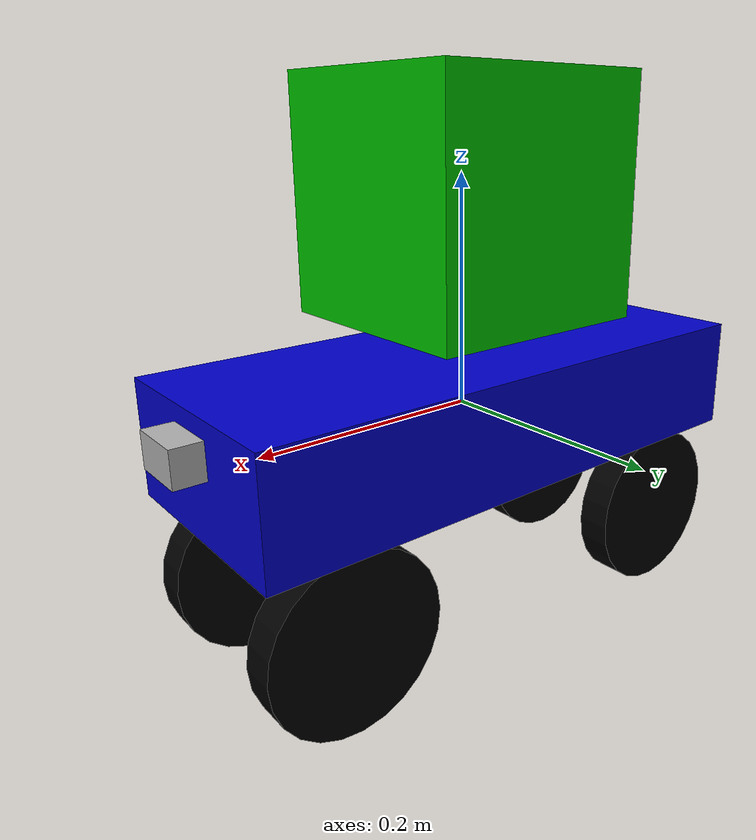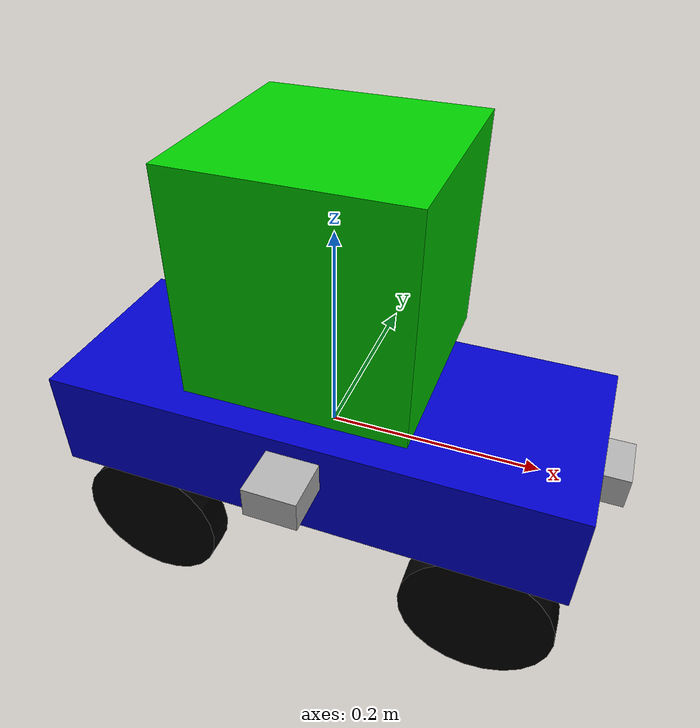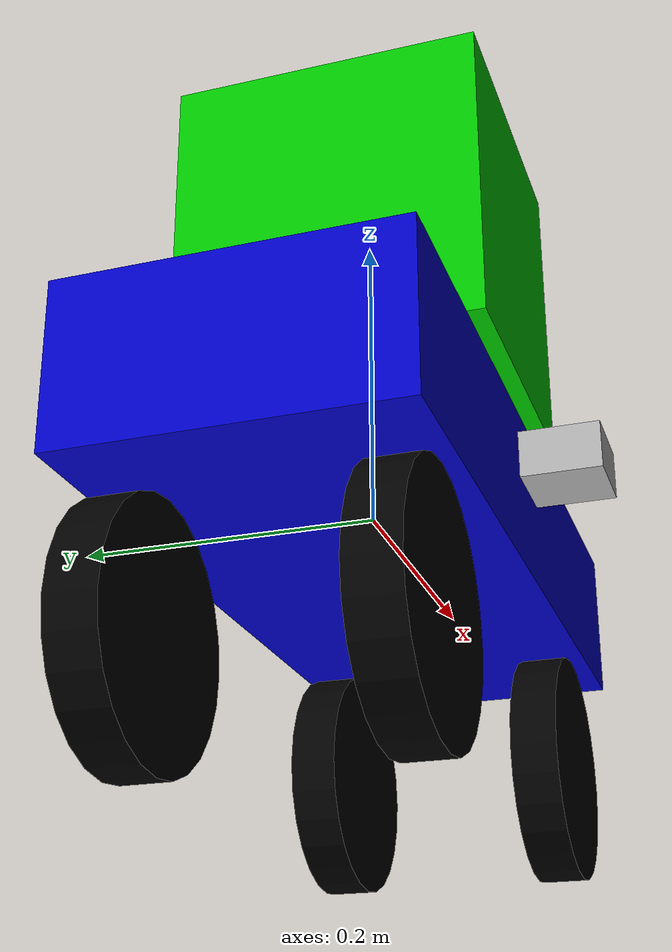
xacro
<?xml version="1.0"?>
<robot name="differential_robot" xmlns:xacro="http://www.ros.org/wiki/xacro">

  <!-- 添加机器人名称参数 -->
  <xacro:arg name="robot_name" default="robot"/>
  <xacro:property name="robot_name" value="$(arg robot_name)" />

  <!-- 材料定义 -->
  <material name="blue">
    <color rgba="0.0 0.0 0.8 1.0"/>
  </material>
  <material name="black">
    <color rgba="0.0 0.0 0.0 1.0"/>
  </material>
  <material name="gray">
    <color rgba="0.7 0.7 0.7 1.0"/>
  </material>
  <material name="red">
    <color rgba="0.8 0.0 0.0 1.0"/>
  </material>
  <material name="white">
    <color rgba="1.0 1.0 1.0 1.0"/>
  </material>
  <material name="green">
    <color rgba="0.0 0.8 0.0 1.0"/>
  </material>

  <!-- 参数定义 -->
  <xacro:property name="base_length" value="0.5" />
  <xacro:property name="base_width" value="0.2" />
  <xacro:property name="base_height" value="0.1" />
  <xacro:property name="wheel_radius" value="0.075" />
  <xacro:property name="wheel_length" value="0.03" />
  <xacro:property name="wheel_y_offset" value="0.075" />
  <xacro:property name="wheel_x_offset" value="0.175" />
  <xacro:property name="wheel_z_offset" value="-0.125" />
  <xacro:property name="cube_size" value="0.2" />
  <xacro:property name="cube_z_offset" value="0.18" />

  <!-- 底盘链接 - 添加TF前缀 -->
  <link name="${robot_name}/base_link">
    <visual>
      <origin xyz="0 0 0" rpy="0 0 0"/>
      <geometry>
        <box size="${base_length} ${base_width} ${base_height}"/>
      </geometry>
      <material name="blue"/>
    </visual>
    <collision>
      <origin xyz="0 0 0" rpy="0 0 0"/>
      <geometry>
        <box size="${base_length} ${base_width} ${base_height}"/>
      </geometry>
    </collision>
    <inertial>
      <mass value="5.0"/>
      <inertia ixx="${(1/12)*5.0*(base_width**2 + base_height**2)}"
               ixy="0.0"
               ixz="0.0"
               iyy="${(1/12)*5.0*(base_length**2 + base_height**2)}"
               iyz="0.0"
               izz="${(1/12)*5.0*(base_length**2 + base_width**2)}"/>
    </inertial>
  </link>

  <!-- 立方体链接 -->
  <link name="${robot_name}/cube_link">
    <visual>
      <origin xyz="0 0 0" rpy="0 0 0"/>
      <geometry>
        <box size="${cube_size} ${cube_size} ${cube_size}"/>
      </geometry>
      <material name="green"/>
    </visual>
    <collision>
      <origin xyz="0 0 0" rpy="0 0 0"/>
      <geometry>
        <box size="${cube_size} ${cube_size} ${cube_size}"/>
      </geometry>
    </collision>
    <inertial>
      <mass value="1.0"/>
      <inertia ixx="${(1/12)*1.0*(cube_size**2 + cube_size**2)}"
               ixy="0.0"
               ixz="0.0"
               iyy="${(1/12)*1.0*(cube_size**2 + cube_size**2)}"
               iyz="0.0"
               izz="${(1/12)*1.0*(cube_size**2 + cube_size**2)}"/>
    </inertial>
  </link>

  <!-- 立方体关节 -->
  <joint name="${robot_name}/cube_joint" type="fixed">
    <parent link="${robot_name}/base_link"/>
    <child link="${robot_name}/cube_link"/>
    <origin xyz="0 0 ${cube_z_offset}" rpy="0 0 0"/>
  </joint>

  <gazebo reference="${robot_name}/cube_link">
    <material>Gazebo/ar</material>
  </gazebo>

  <!-- 轮子宏定义 - 修改为连续旋转关节 -->
  <xacro:macro name="wheel" params="name parent xyz">
    <link name="${robot_name}/${name}">
      <visual>
        <origin xyz="0 0 0" rpy="${pi/2} 0 0"/>
        <geometry>
          <cylinder radius="${wheel_radius}" length="${wheel_length}"/>
        </geometry>
        <material name="black"/>
      </visual>
      <collision>
        <origin xyz="0 0 0" rpy="${pi/2} 0 0"/>
        <geometry>
          <cylinder radius="${wheel_radius}" length="${wheel_length}"/>
        </geometry>
      </collision>
      <inertial>
        <mass value="0.5"/>
        <inertia ixx="${0.5*0.5*(3*wheel_radius**2 + wheel_length**2)/12}"
                 ixy="0.0"
                 ixz="0.0"
                 iyy="${0.5*0.5*(3*wheel_radius**2 + wheel_length**2)/12}"
                 iyz="0.0"
                 izz="${0.5*0.5*wheel_radius**2}"/>
      </inertial>
    </link>

    <!-- 修改为连续旋转关节 -->
    <joint name="${robot_name}/${name}_joint" type="continuous">
      <parent link="${parent}"/>
      <child link="${robot_name}/${name}"/>
      <origin xyz="${xyz}" rpy="0 0 0"/>
      <axis xyz="0 1 0"/>
    </joint>
  </xacro:macro>

  <!-- 创建四个轮子 -->
  <xacro:wheel name="left_rear_wheel" parent="${robot_name}/base_link"
               xyz="-${wheel_x_offset} ${wheel_y_offset} ${wheel_z_offset}"/>
  <xacro:wheel name="right_rear_wheel" parent="${robot_name}/base_link"
               xyz="-${wheel_x_offset} -${wheel_y_offset} ${wheel_z_offset}"/>
  <xacro:wheel name="left_front_wheel" parent="${robot_name}/base_link"
               xyz="${wheel_x_offset} ${wheel_y_offset} ${wheel_z_offset}"/>
  <xacro:wheel name="right_front_wheel" parent="${robot_name}/base_link"
               xyz="${wheel_x_offset} -${wheel_y_offset} ${wheel_z_offset}"/>

  <!-- 在创建四个轮子之后，添加Gazebo物理属性 -->
  <!-- 修改轮子的摩擦配置 -->
  <gazebo reference="${robot_name}/left_rear_wheel">
    <kp>1000000.0</kp>
    <kd>100.0</kd>
    <!-- 关键修改：降低侧向摩擦，保持滚动摩擦 -->
    <mu1>1.5</mu1>    <!-- 滚动方向摩擦 - 保持较高 -->
    <mu2>0.1</mu2>    <!-- 侧向摩擦 - 降低以便转向时滑动 -->
    <fdir1>1 0 0</fdir1>  <!-- 摩擦方向：滚动方向 -->
    <slip1>0.1</slip1>    <!-- 增加滑移 -->
    <slip2>0.1</slip2>
  </gazebo>

  <gazebo reference="${robot_name}/right_rear_wheel">
    <kp>1000000.0</kp>
    <kd>100.0</kd>
    <mu1>1.5</mu1>
    <mu2>0.1</mu2>
    <fdir1>1 0 0</fdir1>
    <slip1>0.1</slip1>
    <slip2>0.1</slip2>
  </gazebo>

  <gazebo reference="${robot_name}/left_front_wheel">
    <kp>1000000.0</kp>
    <kd>100.0</kd>
    <mu1>1.5</mu1>
    <mu2>0.1</mu2>
    <fdir1>1 0 0</fdir1>
    <slip1>0.1</slip1>
    <slip2>0.1</slip2>
  </gazebo>

  <gazebo reference="${robot_name}/right_front_wheel">
    <kp>1000000.0</kp>
    <kd>100.0</kd>
    <mu1>1.5</mu1>
    <mu2>0.1</mu2>
    <fdir1>1 0 0</fdir1>
    <slip1>0.1</slip1>
    <slip2>0.1</slip2>
  </gazebo>

  <!-- IMU传感器 -->
  <link name="${robot_name}/imu_link">
    <visual>
      <origin xyz="0 0 0" rpy="0 0 0"/>
      <geometry>
        <box size="0.03 0.03 0.01"/>
      </geometry>
      <material name="red"/>
    </visual>
    <inertial>
      <mass value="0.01"/>
      <inertia ixx="0.00001" ixy="0.0" ixz="0.0" iyy="0.00001" iyz="0.0" izz="0.00001"/>
    </inertial>
  </link>

  <joint name="${robot_name}/imu_joint" type="fixed">
    <parent link="${robot_name}/base_link"/>
    <child link="${robot_name}/imu_link"/>
    <origin xyz="0 0 0.05" rpy="0 0 0"/>
  </joint>

  <!-- 相机 -->
  <link name="${robot_name}/camera_link">
    <visual>
      <origin xyz="0 0 0" rpy="0 0 0"/>
      <geometry>
        <box size="0.05 0.05 0.03"/>
      </geometry>
      <material name="gray"/>
    </visual>
    <inertial>
      <mass value="0.05"/>
      <inertia ixx="0.00001" ixy="0.0" ixz="0.0" iyy="0.00001" iyz="0.0" izz="0.00001"/>
    </inertial>
  </link>

  <joint name="${robot_name}/camera_joint" type="fixed">
    <parent link="${robot_name}/base_link"/>
    <child link="${robot_name}/camera_link"/>
    <origin xyz="0.25 0 0.02" rpy="0 0 0"/>
  </joint>

  <!-- 右侧相机 -->
  <link name="${robot_name}/right_camera_link">
    <visual>
      <origin xyz="0 0 0" rpy="0 0 0"/>
      <geometry>
        <box size="0.05 0.05 0.03"/>
      </geometry>
      <material name="gray"/>
    </visual>
    <inertial>
      <mass value="0.05"/>
      <inertia ixx="0.00001" ixy="0.0" ixz="0.0" iyy="0.00001" iyz="0.0" izz="0.00001"/>
    </inertial>
  </link>

  <joint name="${robot_name}/right_camera_joint" type="fixed">
    <parent link="${robot_name}/base_link"/>
    <child link="${robot_name}/right_camera_link"/>
    <origin xyz="0 -${base_width/2 + 0.025} 0.02" rpy="0 0 -1.5708"/>
  </joint>

  <!-- Gazebo插件 -->
  <!-- 四轮差速控制器-->
  <gazebo>
    <plugin name="skid_steer_drive_controller" filename="libgazebo_ros_skid_steer_drive.so">
      <updateRate>100.0</updateRate>
      <robotNamespace>${robot_name}</robotNamespace>

      <!-- 确保所有关节名称正确 -->
      <leftFrontJoint>${robot_name}/left_front_wheel_joint</leftFrontJoint>
      <rightFrontJoint>${robot_name}/right_front_wheel_joint</rightFrontJoint>
      <leftRearJoint>${robot_name}/left_rear_wheel_joint</leftRearJoint>
      <rightRearJoint>${robot_name}/right_rear_wheel_joint</rightRearJoint>

      <wheelSeparation>${2 * wheel_y_offset}</wheelSeparation>
      <wheelDiameter>${2 * wheel_radius}</wheelDiameter>
      <robotBaseFrame>${robot_name}/base_link</robotBaseFrame>
      <torque>100</torque>
      <topicName>cmd_vel</topicName>
      <broadcastTF>1</broadcastTF>
      <odometryTopic>odom</odometryTopic>
      <odometryFrame>${robot_name}/odom</odometryFrame>
      <publishWheelTF>false</publishWheelTF>
      <publishWheelJointState>true</publishWheelJointState>  <!-- 改为true便于调试 -->
    </plugin>
  </gazebo>

  <!-- IMU插件 -->
  <gazebo>
    <plugin name="imu_plugin" filename="libgazebo_ros_imu.so">
      <alwaysOn>true</alwaysOn>
      <bodyName>${robot_name}/base_link</bodyName>
      <topicName>imu</topicName>
      <serviceName>imu_service</serviceName>
      <gaussianNoise>0.0</gaussianNoise>
      <updateRate>20.0</updateRate>
      <robotNamespace>${robot_name}</robotNamespace>
    </plugin>
  </gazebo>

  <!-- 相机插件 -->
  <gazebo reference="${robot_name}/camera_link">
    <sensor type="camera" name="camera">
      <update_rate>30</update_rate>
      <camera name="head">
        <horizontal_fov>1.3962634</horizontal_fov>
        <image>
          <width>1920</width>
          <height>1080</height>
          <format>R8G8B8</format>
        </image>
        <clip>
          <near>0.02</near>
          <far>300</far>
        </clip>
        <noise>
          <type>gaussian</type>
          <mean>0.0</mean>
          <stddev>0.007</stddev>
        </noise>
      </camera>
      <plugin name="camera_controller" filename="libgazebo_ros_camera.so">
        <alwaysOn>true</alwaysOn>
        <updateRate>0.0</updateRate>
        <cameraName>camera</cameraName>
        <imageTopicName>image</imageTopicName>
        <cameraInfoTopicName>camera_info</cameraInfoTopicName>
        <frameName>${robot_name}/camera_link</frameName>
        <hackBaseline>0.07</hackBaseline>
        <distortionK1>0.0</distortionK1>
        <distortionK2>0.0</distortionK2>
        <distortionK3>0.0</distortionK3>
        <distortionT1>0.0</distortionT1>
        <distortionT2>0.0</distortionT2>
        <robotNamespace>${robot_name}</robotNamespace>
      </plugin>
    </sensor>
  </gazebo>

  <!-- 右侧相机插件 -->
  <gazebo reference="${robot_name}/right_camera_link">
    <sensor type="camera" name="right_camera">
      <update_rate>30</update_rate>
      <camera name="right">
        <horizontal_fov>1.3962634</horizontal_fov>
        <image>
          <width>1920</width>
          <height>1080</height>
          <format>R8G8B8</format>
        </image>
        <clip>
          <near>0.02</near>
          <far>300</far>
        </clip>
        <noise>
          <type>gaussian</type>
          <mean>0.0</mean>
          <stddev>0.007</stddev>
        </noise>
      </camera>
      <plugin name="right_camera_controller" filename="libgazebo_ros_camera.so">
        <alwaysOn>true</alwaysOn>
        <updateRate>0.0</updateRate>
        <cameraName>right_camera</cameraName>
        <imageTopicName>image_right</imageTopicName>
        <cameraInfoTopicName>camera_info_right</cameraInfoTopicName>
        <frameName>${robot_name}/right_camera_link</frameName>
        <hackBaseline>0.07</hackBaseline>
        <distortionK1>0.0</distortionK1>
        <distortionK2>0.0</distortionK2>
        <distortionK3>0.0</distortionK3>
        <distortionT1>0.0</distortionT1>
        <distortionT2>0.0</distortionT2>
        <robotNamespace>${robot_name}</robotNamespace>
      </plugin>
    </sensor>
  </gazebo>

  <!-- 地面材质配置 -->
  <gazebo>
    <plugin name="ground_plane" filename="libgazebo_ros_planar_move.so">
      <robotNamespace>${robot_name}</robotNamespace>
      <bodyName>${robot_name}/base_link</bodyName>
      <pubTopic>ground_truth</pubTopic>
    </plugin>
  </gazebo>

</robot>
